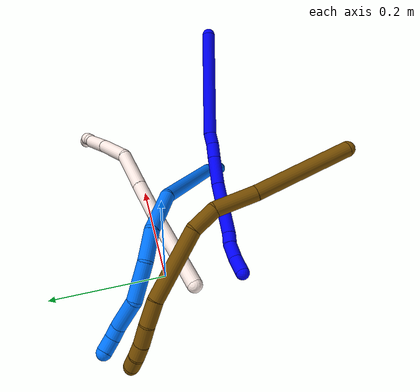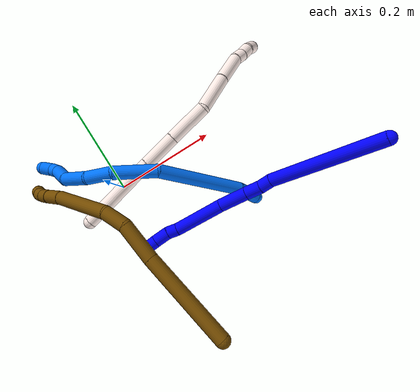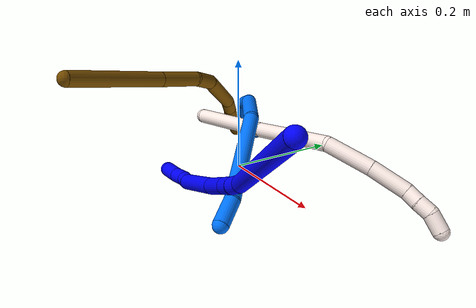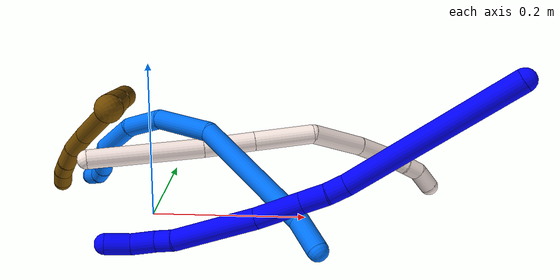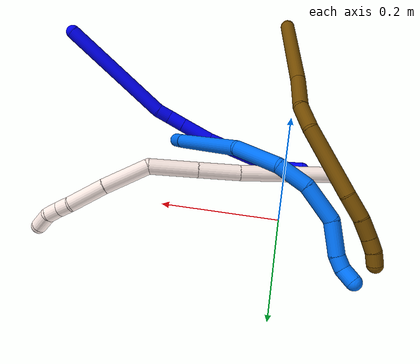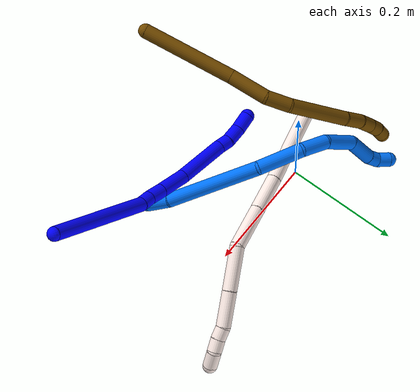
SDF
<sdf version="1.7">
 <world name="default">
  <model name="1">
   <static>0</static>
   <link name="1">
    <collision name="collision-cylinder-e_1_1_4">
     <pose>-0.004917 -0.024879 -0.101706 2.90169 -0.046922 -0.384557</pose>
     <geometry><cylinder><radius>0.0125</radius><length>0.20964</length></cylinder></geometry>
     <surface>
      <friction><ode><mu>1.16</mu><mu2>1.16</mu2><slip1>0</slip1><slip2>0</slip2></ode></friction>
      <contact><ode><kp>1e+06</kp><kd>1</kd><max_vel>0</max_vel><min_depth>0.001</min_depth></ode></contact>
     </surface>
    </collision>
    <visual name="visual-cylinder-e_1_1_4">
     <pose>-0.004917 -0.024879 -0.101706 2.90169 -0.046922 -0.384557</pose>
     <geometry><cylinder><radius>0.0125</radius><length>0.20964</length></cylinder></geometry>
     <material><ambient>0 0 1 1</ambient></material>
    </visual>
    <collision name="collision-cylinder-e_2_4_5">
     <pose>-0.013176 -0.051934 -0.214553 2.94869 -0.286384 -1.95954</pose>
     <geometry><cylinder><radius>0.0125</radius><length>0.023668</length></cylinder></geometry>
     <surface>
      <friction><ode><mu>1.16</mu><mu2>1.16</mu2><slip1>0</slip1><slip2>0</slip2></ode></friction>
      <contact><ode><kp>1e+06</kp><kd>1</kd><max_vel>0</max_vel><min_depth>0.001</min_depth></ode></contact>
     </surface>
    </collision>
    <visual name="visual-cylinder-e_2_4_5">
     <pose>-0.013176 -0.051934 -0.214553 2.94869 -0.286384 -1.95954</pose>
     <geometry><cylinder><radius>0.0125</radius><length>0.023668</length></cylinder></geometry>
     <material><ambient>0 0 1 1</ambient></material>
    </visual>
    <collision name="collision-cylinder-e_3_5_6">
     <pose>-0.019427 -0.054931 -0.240234 3.08516 -0.197114 -2.58547</pose>
     <geometry><cylinder><radius>0.0125</radius><length>0.029701</length></cylinder></geometry>
     <surface>
      <friction><ode><mu>1.16</mu><mu2>1.16</mu2><slip1>0</slip1><slip2>0</slip2></ode></friction>
      <contact><ode><kp>1e+06</kp><kd>1</kd><max_vel>0</max_vel><min_depth>0.001</min_depth></ode></contact>
     </surface>
    </collision>
    <visual name="visual-cylinder-e_3_5_6">
     <pose>-0.019427 -0.054931 -0.240234 3.08516 -0.197114 -2.58547</pose>
     <geometry><cylinder><radius>0.0125</radius><length>0.029701</length></cylinder></geometry>
     <material><ambient>0 0 1 1</ambient></material>
    </visual>
    <collision name="collision-cylinder-e_4_6_7">
     <pose>-0.028386 -0.057579 -0.281815 3.07416 -0.219644 -2.54793</pose>
     <geometry><cylinder><radius>0.0125</radius><length>0.05554</length></cylinder></geometry>
     <surface>
      <friction><ode><mu>1.16</mu><mu2>1.16</mu2><slip1>0</slip1><slip2>0</slip2></ode></friction>
      <contact><ode><kp>1e+06</kp><kd>1</kd><max_vel>0</max_vel><min_depth>0.001</min_depth></ode></contact>
     </surface>
    </collision>
    <visual name="visual-cylinder-e_4_6_7">
     <pose>-0.028386 -0.057579 -0.281815 3.07416 -0.219644 -2.54793</pose>
     <geometry><cylinder><radius>0.0125</radius><length>0.05554</length></cylinder></geometry>
     <material><ambient>0 0 1 1</ambient></material>
    </visual>
    <collision name="collision-cylinder-e_5_7_8">
     <pose>-0.049445 -0.059577 -0.356586 3.13799 -0.304652 -3.11815</pose>
     <geometry><cylinder><radius>0.0125</radius><length>0.10007</length></cylinder></geometry>
     <surface>
      <friction><ode><mu>1.16</mu><mu2>1.16</mu2><slip1>0</slip1><slip2>0</slip2></ode></friction>
      <contact><ode><kp>1e+06</kp><kd>1</kd><max_vel>0</max_vel><min_depth>0.001</min_depth></ode></contact>
     </surface>
    </collision>
    <visual name="visual-cylinder-e_5_7_8">
     <pose>-0.049445 -0.059577 -0.356586 3.13799 -0.304652 -3.11815</pose>
     <geometry><cylinder><radius>0.0125</radius><length>0.10007</length></cylinder></geometry>
     <material><ambient>0 0 1 1</ambient></material>
    </visual>
    <collision name="collision-cylinder-e_6_8_9">
     <pose>-0.066711 -0.057701 -0.41437 -2.94069 -0.216544 1.64625</pose>
     <geometry><cylinder><radius>0.0125</radius><length>0.021009</length></cylinder></geometry>
     <surface>
      <friction><ode><mu>1.16</mu><mu2>1.16</mu2><slip1>0</slip1><slip2>0</slip2></ode></friction>
      <contact><ode><kp>1e+06</kp><kd>1</kd><max_vel>0</max_vel><min_depth>0.001</min_depth></ode></contact>
     </surface>
    </collision>
    <visual name="visual-cylinder-e_6_8_9">
     <pose>-0.066711 -0.057701 -0.41437 -2.94069 -0.216544 1.64625</pose>
     <geometry><cylinder><radius>0.0125</radius><length>0.021009</length></cylinder></geometry>
     <material><ambient>0 0 1 1</ambient></material>
    </visual>
    <collision name="collision-cylinder-e_7_9_10">
     <pose>-0.075587 -0.053757 -0.43758 -2.99843 -0.462013 2.54977</pose>
     <geometry><cylinder><radius>0.0125</radius><length>0.029701</length></cylinder></geometry>
     <surface>
      <friction><ode><mu>1.16</mu><mu2>1.16</mu2><slip1>0</slip1><slip2>0</slip2></ode></friction>
      <contact><ode><kp>1e+06</kp><kd>1</kd><max_vel>0</max_vel><min_depth>0.001</min_depth></ode></contact>
     </surface>
    </collision>
    <visual name="visual-cylinder-e_7_9_10">
     <pose>-0.075587 -0.053757 -0.43758 -2.99843 -0.462013 2.54977</pose>
     <geometry><cylinder><radius>0.0125</radius><length>0.029701</length></cylinder></geometry>
     <material><ambient>0 0 1 1</ambient></material>
    </visual>
    <collision name="collision-cylinder-e_8_10_2">
     <pose>-0.090366 -0.048076 -0.46316 -2.84588 -0.560987 2.18727</pose>
     <geometry><cylinder><radius>0.0125</radius><length>0.030672</length></cylinder></geometry>
     <surface>
      <friction><ode><mu>1.16</mu><mu2>1.16</mu2><slip1>0</slip1><slip2>0</slip2></ode></friction>
      <contact><ode><kp>1e+06</kp><kd>1</kd><max_vel>0</max_vel><min_depth>0.001</min_depth></ode></contact>
     </surface>
    </collision>
    <visual name="visual-cylinder-e_8_10_2">
     <pose>-0.090366 -0.048076 -0.46316 -2.84588 -0.560987 2.18727</pose>
     <geometry><cylinder><radius>0.0125</radius><length>0.030672</length></cylinder></geometry>
     <material><ambient>0 0 1 1</ambient></material>
    </visual>
    <collision name="collision-sphere-2">
     <pose>-0.098525 -0.044292 -0.475582 0 -0 0</pose>
     <geometry><sphere><radius>0.0125</radius></sphere></geometry>
     <surface>
      <friction><ode><mu>1.16</mu><mu2>1.16</mu2><slip1>0</slip1><slip2>0</slip2></ode></friction>
      <contact><ode><kp>1e+06</kp><kd>1</kd><max_vel>0</max_vel><min_depth>0.001</min_depth></ode></contact>
     </surface>
    </collision>
    <visual name="visual-sphere-2">
     <pose>-0.098525 -0.044292 -0.475582 0 -0 0</pose>
     <geometry><sphere><radius>0.0125</radius></sphere></geometry>
     <material><ambient>0 0 1 1</ambient></material>
    </visual>
    <collision name="collision-sphere-10">
     <pose>-0.082207 -0.051861 -0.450738 0 -0 0</pose>
     <geometry><sphere><radius>0.0125</radius></sphere></geometry>
     <surface>
      <friction><ode><mu>1.16</mu><mu2>1.16</mu2><slip1>0</slip1><slip2>0</slip2></ode></friction>
      <contact><ode><kp>1e+06</kp><kd>1</kd><max_vel>0</max_vel><min_depth>0.001</min_depth></ode></contact>
     </surface>
    </collision>
    <visual name="visual-sphere-10">
     <pose>-0.082207 -0.051861 -0.450738 0 -0 0</pose>
     <geometry><sphere><radius>0.0125</radius></sphere></geometry>
     <material><ambient>0 0 1 1</ambient></material>
    </visual>
    <collision name="collision-sphere-9">
     <pose>-0.068968 -0.055654 -0.424423 0 -0 0</pose>
     <geometry><sphere><radius>0.0125</radius></sphere></geometry>
     <surface>
      <friction><ode><mu>1.16</mu><mu2>1.16</mu2><slip1>0</slip1><slip2>0</slip2></ode></friction>
      <contact><ode><kp>1e+06</kp><kd>1</kd><max_vel>0</max_vel><min_depth>0.001</min_depth></ode></contact>
     </surface>
    </collision>
    <visual name="visual-sphere-9">
     <pose>-0.068968 -0.055654 -0.424423 0 -0 0</pose>
     <geometry><sphere><radius>0.0125</radius></sphere></geometry>
     <material><ambient>0 0 1 1</ambient></material>
    </visual>
    <collision name="collision-sphere-4">
     <pose>-0.009833 -0.049758 -0.203412 0 -0 0</pose>
     <geometry><sphere><radius>0.0125</radius></sphere></geometry>
     <surface>
      <friction><ode><mu>1.16</mu><mu2>1.16</mu2><slip1>0</slip1><slip2>0</slip2></ode></friction>
      <contact><ode><kp>1e+06</kp><kd>1</kd><max_vel>0</max_vel><min_depth>0.001</min_depth></ode></contact>
     </surface>
    </collision>
    <visual name="visual-sphere-4">
     <pose>-0.009833 -0.049758 -0.203412 0 -0 0</pose>
     <geometry><sphere><radius>0.0125</radius></sphere></geometry>
     <material><ambient>0 0 1 1</ambient></material>
    </visual>
    <collision name="collision-sphere-1">
     <geometry><sphere><radius>0.0125</radius></sphere></geometry>
     <surface>
      <friction><ode><mu>1.16</mu><mu2>1.16</mu2><slip1>0</slip1><slip2>0</slip2></ode></friction>
      <contact><ode><kp>1e+06</kp><kd>1</kd><max_vel>0</max_vel><min_depth>0.001</min_depth></ode></contact>
     </surface>
    </collision>
    <visual name="visual-sphere-1">
     <geometry><sphere><radius>0.0125</radius></sphere></geometry>
     <material><ambient>0 0 1 1</ambient></material>
    </visual>
    <collision name="collision-sphere-8">
     <pose>-0.064454 -0.059749 -0.404317 0 -0 0</pose>
     <geometry><sphere><radius>0.0125</radius></sphere></geometry>
     <surface>
      <friction><ode><mu>1.16</mu><mu2>1.16</mu2><slip1>0</slip1><slip2>0</slip2></ode></friction>
      <contact><ode><kp>1e+06</kp><kd>1</kd><max_vel>0</max_vel><min_depth>0.001</min_depth></ode></contact>
     </surface>
    </collision>
    <visual name="visual-sphere-8">
     <pose>-0.064454 -0.059749 -0.404317 0 -0 0</pose>
     <geometry><sphere><radius>0.0125</radius></sphere></geometry>
     <material><ambient>0 0 1 1</ambient></material>
    </visual>
    <collision name="collision-sphere-5">
     <pose>-0.016519 -0.05411 -0.225694 0 -0 0</pose>
     <geometry><sphere><radius>0.0125</radius></sphere></geometry>
     <surface>
      <friction><ode><mu>1.16</mu><mu2>1.16</mu2><slip1>0</slip1><slip2>0</slip2></ode></friction>
      <contact><ode><kp>1e+06</kp><kd>1</kd><max_vel>0</max_vel><min_depth>0.001</min_depth></ode></contact>
     </surface>
    </collision>
    <visual name="visual-sphere-5">
     <pose>-0.016519 -0.05411 -0.225694 0 -0 0</pose>
     <geometry><sphere><radius>0.0125</radius></sphere></geometry>
     <material><ambient>0 0 1 1</ambient></material>
    </visual>
    <collision name="collision-sphere-6">
     <pose>-0.022336 -0.055753 -0.254774 0 -0 0</pose>
     <geometry><sphere><radius>0.0125</radius></sphere></geometry>
     <surface>
      <friction><ode><mu>1.16</mu><mu2>1.16</mu2><slip1>0</slip1><slip2>0</slip2></ode></friction>
      <contact><ode><kp>1e+06</kp><kd>1</kd><max_vel>0</max_vel><min_depth>0.001</min_depth></ode></contact>
     </surface>
    </collision>
    <visual name="visual-sphere-6">
     <pose>-0.022336 -0.055753 -0.254774 0 -0 0</pose>
     <geometry><sphere><radius>0.0125</radius></sphere></geometry>
     <material><ambient>0 0 1 1</ambient></material>
    </visual>
    <collision name="collision-sphere-7">
     <pose>-0.034437 -0.059405 -0.308856 0 -0 0</pose>
     <geometry><sphere><radius>0.0125</radius></sphere></geometry>
     <surface>
      <friction><ode><mu>1.16</mu><mu2>1.16</mu2><slip1>0</slip1><slip2>0</slip2></ode></friction>
      <contact><ode><kp>1e+06</kp><kd>1</kd><max_vel>0</max_vel><min_depth>0.001</min_depth></ode></contact>
     </surface>
    </collision>
    <visual name="visual-sphere-7">
     <pose>-0.034437 -0.059405 -0.308856 0 -0 0</pose>
     <geometry><sphere><radius>0.0125</radius></sphere></geometry>
     <material><ambient>0 0 1 1</ambient></material>
    </visual>
    <inertial>
     <pose>-0.029725 -0.043039 -0.241557 0 -0 0</pose>
     <mass>0.5</mass>
     <inertia>
      <ixx>0.000307</ixx>
      <ixy>0</ixy>
      <ixz>0</ixz>
      <iyy>-0.000888</iyy>
      <iyz>0</iyz>
      <izz>0.000219</izz>
     </inertia>
    </inertial>
   </link>
   <pose>0.406671 -0.183846 0.219406 1.13694 0.256713 1.08536</pose>
  </model>
  <model name="11">
   <static>0</static>
   <link name="11">
    <collision name="collision-cylinder-e_1_1_4">
     <pose>0.060276 0.038331 0.018722 -1.11644 0.954903 -0.625002</pose>
     <geometry><cylinder><radius>0.0125</radius><length>0.147687</length></cylinder></geometry>
     <surface>
      <friction><ode><mu>1.16</mu><mu2>1.16</mu2><slip1>0</slip1><slip2>0</slip2></ode></friction>
      <contact><ode><kp>1e+06</kp><kd>1</kd><max_vel>0</max_vel><min_depth>0.001</min_depth></ode></contact>
     </surface>
    </collision>
    <visual name="visual-cylinder-e_1_1_4">
     <pose>0.060276 0.038331 0.018722 -1.11644 0.954903 -0.625002</pose>
     <geometry><cylinder><radius>0.0125</radius><length>0.147687</length></cylinder></geometry>
     <material><ambient>1 0.933333 0.909804 1</ambient></material>
    </visual>
    <collision name="collision-cylinder-e_2_4_5">
     <pose>0.14693 0.09514 0.045165 -1.175 0.92144 -0.638465</pose>
     <geometry><cylinder><radius>0.0125</radius><length>0.06624</length></cylinder></geometry>
     <surface>
      <friction><ode><mu>1.16</mu><mu2>1.16</mu2><slip1>0</slip1><slip2>0</slip2></ode></friction>
      <contact><ode><kp>1e+06</kp><kd>1</kd><max_vel>0</max_vel><min_depth>0.001</min_depth></ode></contact>
     </surface>
    </collision>
    <visual name="visual-cylinder-e_2_4_5">
     <pose>0.14693 0.09514 0.045165 -1.175 0.92144 -0.638465</pose>
     <geometry><cylinder><radius>0.0125</radius><length>0.06624</length></cylinder></geometry>
     <material><ambient>1 0.933333 0.909804 1</ambient></material>
    </visual>
    <collision name="collision-cylinder-e_3_5_6">
     <pose>0.204051 0.135462 0.062204 -1.16762 0.913061 -0.62748</pose>
     <geometry><cylinder><radius>0.0125</radius><length>0.077692</length></cylinder></geometry>
     <surface>
      <friction><ode><mu>1.16</mu><mu2>1.16</mu2><slip1>0</slip1><slip2>0</slip2></ode></friction>
      <contact><ode><kp>1e+06</kp><kd>1</kd><max_vel>0</max_vel><min_depth>0.001</min_depth></ode></contact>
     </surface>
    </collision>
    <visual name="visual-cylinder-e_3_5_6">
     <pose>0.204051 0.135462 0.062204 -1.16762 0.913061 -0.62748</pose>
     <geometry><cylinder><radius>0.0125</radius><length>0.077692</length></cylinder></geometry>
     <material><ambient>1 0.933333 0.909804 1</ambient></material>
    </visual>
    <collision name="collision-cylinder-e_4_6_7">
     <pose>0.268888 0.161404 0.086977 -0.259196 1.13226 -0.165275</pose>
     <geometry><cylinder><radius>0.0125</radius><length>0.075317</length></cylinder></geometry>
     <surface>
      <friction><ode><mu>1.16</mu><mu2>1.16</mu2><slip1>0</slip1><slip2>0</slip2></ode></friction>
      <contact><ode><kp>1e+06</kp><kd>1</kd><max_vel>0</max_vel><min_depth>0.001</min_depth></ode></contact>
     </surface>
    </collision>
    <visual name="visual-cylinder-e_4_6_7">
     <pose>0.268888 0.161404 0.086977 -0.259196 1.13226 -0.165275</pose>
     <geometry><cylinder><radius>0.0125</radius><length>0.075317</length></cylinder></geometry>
     <material><ambient>1 0.933333 0.909804 1</ambient></material>
    </visual>
    <collision name="collision-cylinder-e_5_7_8">
     <pose>0.329506 0.167272 0.116706 -0.123348 1.07395 -0.073492</pose>
     <geometry><cylinder><radius>0.0125</radius><length>0.060342</length></cylinder></geometry>
     <surface>
      <friction><ode><mu>1.16</mu><mu2>1.16</mu2><slip1>0</slip1><slip2>0</slip2></ode></friction>
      <contact><ode><kp>1e+06</kp><kd>1</kd><max_vel>0</max_vel><min_depth>0.001</min_depth></ode></contact>
     </surface>
    </collision>
    <visual name="visual-cylinder-e_5_7_8">
     <pose>0.329506 0.167272 0.116706 -0.123348 1.07395 -0.073492</pose>
     <geometry><cylinder><radius>0.0125</radius><length>0.060342</length></cylinder></geometry>
     <material><ambient>1 0.933333 0.909804 1</ambient></material>
    </visual>
    <collision name="collision-cylinder-e_6_8_9">
     <pose>0.363728 0.170626 0.138066 -0.219933 0.814494 -0.095183</pose>
     <geometry><cylinder><radius>0.0125</radius><length>0.021168</length></cylinder></geometry>
     <surface>
      <friction><ode><mu>1.16</mu><mu2>1.16</mu2><slip1>0</slip1><slip2>0</slip2></ode></friction>
      <contact><ode><kp>1e+06</kp><kd>1</kd><max_vel>0</max_vel><min_depth>0.001</min_depth></ode></contact>
     </surface>
    </collision>
    <visual name="visual-cylinder-e_6_8_9">
     <pose>0.363728 0.170626 0.138066 -0.219933 0.814494 -0.095183</pose>
     <geometry><cylinder><radius>0.0125</radius><length>0.021168</length></cylinder></geometry>
     <material><ambient>1 0.933333 0.909804 1</ambient></material>
    </visual>
    <collision name="collision-cylinder-e_7_9_10">
     <pose>0.380358 0.17318 0.151861 -0.143651 0.921728 -0.071419</pose>
     <geometry><cylinder><radius>0.0125</radius><length>0.022422</length></cylinder></geometry>
     <surface>
      <friction><ode><mu>1.16</mu><mu2>1.16</mu2><slip1>0</slip1><slip2>0</slip2></ode></friction>
      <contact><ode><kp>1e+06</kp><kd>1</kd><max_vel>0</max_vel><min_depth>0.001</min_depth></ode></contact>
     </surface>
    </collision>
    <visual name="visual-cylinder-e_7_9_10">
     <pose>0.380358 0.17318 0.151861 -0.143651 0.921728 -0.071419</pose>
     <geometry><cylinder><radius>0.0125</radius><length>0.022422</length></cylinder></geometry>
     <material><ambient>1 0.933333 0.909804 1</ambient></material>
    </visual>
    <collision name="collision-cylinder-e_8_10_2">
     <pose>0.397599 0.171662 0.170268 0.209576 0.607171 0.065871</pose>
     <geometry><cylinder><radius>0.0125</radius><length>0.029131</length></cylinder></geometry>
     <surface>
      <friction><ode><mu>1.16</mu><mu2>1.16</mu2><slip1>0</slip1><slip2>0</slip2></ode></friction>
      <contact><ode><kp>1e+06</kp><kd>1</kd><max_vel>0</max_vel><min_depth>0.001</min_depth></ode></contact>
     </surface>
    </collision>
    <visual name="visual-cylinder-e_8_10_2">
     <pose>0.397599 0.171662 0.170268 0.209576 0.607171 0.065871</pose>
     <geometry><cylinder><radius>0.0125</radius><length>0.029131</length></cylinder></geometry>
     <material><ambient>1 0.933333 0.909804 1</ambient></material>
    </visual>
    <collision name="collision-sphere-2">
     <pose>0.40591 0.169173 0.181968 0 -0 0</pose>
     <geometry><sphere><radius>0.0125</radius></sphere></geometry>
     <surface>
      <friction><ode><mu>1.16</mu><mu2>1.16</mu2><slip1>0</slip1><slip2>0</slip2></ode></friction>
      <contact><ode><kp>1e+06</kp><kd>1</kd><max_vel>0</max_vel><min_depth>0.001</min_depth></ode></contact>
     </surface>
    </collision>
    <visual name="visual-sphere-2">
     <pose>0.40591 0.169173 0.181968 0 -0 0</pose>
     <geometry><sphere><radius>0.0125</radius></sphere></geometry>
     <material><ambient>1 0.933333 0.909804 1</ambient></material>
    </visual>
    <collision name="collision-sphere-10">
     <pose>0.389289 0.17415 0.158568 0 -0 0</pose>
     <geometry><sphere><radius>0.0125</radius></sphere></geometry>
     <surface>
      <friction><ode><mu>1.16</mu><mu2>1.16</mu2><slip1>0</slip1><slip2>0</slip2></ode></friction>
      <contact><ode><kp>1e+06</kp><kd>1</kd><max_vel>0</max_vel><min_depth>0.001</min_depth></ode></contact>
     </surface>
    </collision>
    <visual name="visual-sphere-10">
     <pose>0.389289 0.17415 0.158568 0 -0 0</pose>
     <geometry><sphere><radius>0.0125</radius></sphere></geometry>
     <material><ambient>1 0.933333 0.909804 1</ambient></material>
    </visual>
    <collision name="collision-sphere-9">
     <pose>0.371427 0.17221 0.145155 0 -0 0</pose>
     <geometry><sphere><radius>0.0125</radius></sphere></geometry>
     <surface>
      <friction><ode><mu>1.16</mu><mu2>1.16</mu2><slip1>0</slip1><slip2>0</slip2></ode></friction>
      <contact><ode><kp>1e+06</kp><kd>1</kd><max_vel>0</max_vel><min_depth>0.001</min_depth></ode></contact>
     </surface>
    </collision>
    <visual name="visual-sphere-9">
     <pose>0.371427 0.17221 0.145155 0 -0 0</pose>
     <geometry><sphere><radius>0.0125</radius></sphere></geometry>
     <material><ambient>1 0.933333 0.909804 1</ambient></material>
    </visual>
    <collision name="collision-sphere-4">
     <pose>0.120551 0.076661 0.037444 0 -0 0</pose>
     <geometry><sphere><radius>0.0125</radius></sphere></geometry>
     <surface>
      <friction><ode><mu>1.16</mu><mu2>1.16</mu2><slip1>0</slip1><slip2>0</slip2></ode></friction>
      <contact><ode><kp>1e+06</kp><kd>1</kd><max_vel>0</max_vel><min_depth>0.001</min_depth></ode></contact>
     </surface>
    </collision>
    <visual name="visual-sphere-4">
     <pose>0.120551 0.076661 0.037444 0 -0 0</pose>
     <geometry><sphere><radius>0.0125</radius></sphere></geometry>
     <material><ambient>1 0.933333 0.909804 1</ambient></material>
    </visual>
    <collision name="collision-sphere-1">
     <geometry><sphere><radius>0.0125</radius></sphere></geometry>
     <surface>
      <friction><ode><mu>1.16</mu><mu2>1.16</mu2><slip1>0</slip1><slip2>0</slip2></ode></friction>
      <contact><ode><kp>1e+06</kp><kd>1</kd><max_vel>0</max_vel><min_depth>0.001</min_depth></ode></contact>
     </surface>
    </collision>
    <visual name="visual-sphere-1">
     <geometry><sphere><radius>0.0125</radius></sphere></geometry>
     <material><ambient>1 0.933333 0.909804 1</ambient></material>
    </visual>
    <collision name="collision-sphere-8">
     <pose>0.356029 0.169041 0.130978 0 -0 0</pose>
     <geometry><sphere><radius>0.0125</radius></sphere></geometry>
     <surface>
      <friction><ode><mu>1.16</mu><mu2>1.16</mu2><slip1>0</slip1><slip2>0</slip2></ode></friction>
      <contact><ode><kp>1e+06</kp><kd>1</kd><max_vel>0</max_vel><min_depth>0.001</min_depth></ode></contact>
     </surface>
    </collision>
    <visual name="visual-sphere-8">
     <pose>0.356029 0.169041 0.130978 0 -0 0</pose>
     <geometry><sphere><radius>0.0125</radius></sphere></geometry>
     <material><ambient>1 0.933333 0.909804 1</ambient></material>
    </visual>
    <collision name="collision-sphere-5">
     <pose>0.173309 0.113618 0.052886 0 -0 0</pose>
     <geometry><sphere><radius>0.0125</radius></sphere></geometry>
     <surface>
      <friction><ode><mu>1.16</mu><mu2>1.16</mu2><slip1>0</slip1><slip2>0</slip2></ode></friction>
      <contact><ode><kp>1e+06</kp><kd>1</kd><max_vel>0</max_vel><min_depth>0.001</min_depth></ode></contact>
     </surface>
    </collision>
    <visual name="visual-sphere-5">
     <pose>0.173309 0.113618 0.052886 0 -0 0</pose>
     <geometry><sphere><radius>0.0125</radius></sphere></geometry>
     <material><ambient>1 0.933333 0.909804 1</ambient></material>
    </visual>
    <collision name="collision-sphere-6">
     <pose>0.234793 0.157305 0.071521 0 -0 0</pose>
     <geometry><sphere><radius>0.0125</radius></sphere></geometry>
     <surface>
      <friction><ode><mu>1.16</mu><mu2>1.16</mu2><slip1>0</slip1><slip2>0</slip2></ode></friction>
      <contact><ode><kp>1e+06</kp><kd>1</kd><max_vel>0</max_vel><min_depth>0.001</min_depth></ode></contact>
     </surface>
    </collision>
    <visual name="visual-sphere-6">
     <pose>0.234793 0.157305 0.071521 0 -0 0</pose>
     <geometry><sphere><radius>0.0125</radius></sphere></geometry>
     <material><ambient>1 0.933333 0.909804 1</ambient></material>
    </visual>
    <collision name="collision-sphere-7">
     <pose>0.302983 0.165502 0.102434 0 -0 0</pose>
     <geometry><sphere><radius>0.0125</radius></sphere></geometry>
     <surface>
      <friction><ode><mu>1.16</mu><mu2>1.16</mu2><slip1>0</slip1><slip2>0</slip2></ode></friction>
      <contact><ode><kp>1e+06</kp><kd>1</kd><max_vel>0</max_vel><min_depth>0.001</min_depth></ode></contact>
     </surface>
    </collision>
    <visual name="visual-sphere-7">
     <pose>0.302983 0.165502 0.102434 0 -0 0</pose>
     <geometry><sphere><radius>0.0125</radius></sphere></geometry>
     <material><ambient>1 0.933333 0.909804 1</ambient></material>
    </visual>
    <inertial>
     <pose>0.204866 0.114466 0.070941 0 -0 0</pose>
     <mass>0.5</mass>
     <inertia>
      <ixx>0.000104</ixx>
      <ixy>0</ixy>
      <ixz>0</ixz>
      <iyy>0.000224</iyy>
      <iyz>0</iyz>
      <izz>-0.000508</izz>
     </inertia>
    </inertial>
   </link>
   <pose>-0.075288 -0.03185 0.083345 2.48982 0.073061 0.836734</pose>
  </model>
  <model name="12">
   <static>0</static>
   <link name="12">
    <collision name="collision-cylinder-e_1_1_4">
     <pose>-0.024055 0.061344 -0.048035 -2.23512 -0.299461 0.600733</pose>
     <geometry><cylinder><radius>0.0125</radius><length>0.163084</length></cylinder></geometry>
     <surface>
      <friction><ode><mu>1.16</mu><mu2>1.16</mu2><slip1>0</slip1><slip2>0</slip2></ode></friction>
      <contact><ode><kp>1e+06</kp><kd>1</kd><max_vel>0</max_vel><min_depth>0.001</min_depth></ode></contact>
     </surface>
    </collision>
    <visual name="visual-cylinder-e_1_1_4">
     <pose>-0.024055 0.061344 -0.048035 -2.23512 -0.299461 0.600733</pose>
     <geometry><cylinder><radius>0.0125</radius><length>0.163084</length></cylinder></geometry>
     <material><ambient>0.466667 0.301961 0 1</ambient></material>
    </visual>
    <collision name="collision-cylinder-e_2_4_5">
     <pose>-0.057396 0.14691 -0.118139 -2.30969 -0.276119 0.609498</pose>
     <geometry><cylinder><radius>0.0125</radius><length>0.068115</length></cylinder></geometry>
     <surface>
      <friction><ode><mu>1.16</mu><mu2>1.16</mu2><slip1>0</slip1><slip2>0</slip2></ode></friction>
      <contact><ode><kp>1e+06</kp><kd>1</kd><max_vel>0</max_vel><min_depth>0.001</min_depth></ode></contact>
     </surface>
    </collision>
    <visual name="visual-cylinder-e_2_4_5">
     <pose>-0.057396 0.14691 -0.118139 -2.30969 -0.276119 0.609498</pose>
     <geometry><cylinder><radius>0.0125</radius><length>0.068115</length></cylinder></geometry>
     <material><ambient>0.466667 0.301961 0 1</ambient></material>
    </visual>
    <collision name="collision-cylinder-e_3_5_6">
     <pose>-0.075695 0.189459 -0.147271 -1.93872 -0.430275 0.616552</pose>
     <geometry><cylinder><radius>0.0125</radius><length>0.043223</length></cylinder></geometry>
     <surface>
      <friction><ode><mu>1.16</mu><mu2>1.16</mu2><slip1>0</slip1><slip2>0</slip2></ode></friction>
      <contact><ode><kp>1e+06</kp><kd>1</kd><max_vel>0</max_vel><min_depth>0.001</min_depth></ode></contact>
     </surface>
    </collision>
    <visual name="visual-cylinder-e_3_5_6">
     <pose>-0.075695 0.189459 -0.147271 -1.93872 -0.430275 0.616552</pose>
     <geometry><cylinder><radius>0.0125</radius><length>0.043223</length></cylinder></geometry>
     <material><ambient>0.466667 0.301961 0 1</ambient></material>
    </visual>
    <collision name="collision-cylinder-e_4_6_7">
     <pose>-0.118041 0.254625 -0.156521 -1.61742 -0.617961 0.6455</pose>
     <geometry><cylinder><radius>0.0125</radius><length>0.115058</length></cylinder></geometry>
     <surface>
      <friction><ode><mu>1.16</mu><mu2>1.16</mu2><slip1>0</slip1><slip2>0</slip2></ode></friction>
      <contact><ode><kp>1e+06</kp><kd>1</kd><max_vel>0</max_vel><min_depth>0.001</min_depth></ode></contact>
     </surface>
    </collision>
    <visual name="visual-cylinder-e_4_6_7">
     <pose>-0.118041 0.254625 -0.156521 -1.61742 -0.617961 0.6455</pose>
     <geometry><cylinder><radius>0.0125</radius><length>0.115058</length></cylinder></geometry>
     <material><ambient>0.466667 0.301961 0 1</ambient></material>
    </visual>
    <collision name="collision-cylinder-e_5_7_8">
     <pose>-0.163925 0.315507 -0.156463 -1.4124 -0.723159 0.624098</pose>
     <geometry><cylinder><radius>0.0125</radius><length>0.037939</length></cylinder></geometry>
     <surface>
      <friction><ode><mu>1.16</mu><mu2>1.16</mu2><slip1>0</slip1><slip2>0</slip2></ode></friction>
      <contact><ode><kp>1e+06</kp><kd>1</kd><max_vel>0</max_vel><min_depth>0.001</min_depth></ode></contact>
     </surface>
    </collision>
    <visual name="visual-cylinder-e_5_7_8">
     <pose>-0.163925 0.315507 -0.156463 -1.4124 -0.723159 0.624098</pose>
     <geometry><cylinder><radius>0.0125</radius><length>0.037939</length></cylinder></geometry>
     <material><ambient>0.466667 0.301961 0 1</ambient></material>
    </visual>
    <collision name="collision-cylinder-e_6_8_9">
     <pose>-0.18878 0.338875 -0.152264 -1.36401 -0.911861 0.75789</pose>
     <geometry><cylinder><radius>0.0125</radius><length>0.03112</length></cylinder></geometry>
     <surface>
      <friction><ode><mu>1.16</mu><mu2>1.16</mu2><slip1>0</slip1><slip2>0</slip2></ode></friction>
      <contact><ode><kp>1e+06</kp><kd>1</kd><max_vel>0</max_vel><min_depth>0.001</min_depth></ode></contact>
     </surface>
    </collision>
    <visual name="visual-cylinder-e_6_8_9">
     <pose>-0.18878 0.338875 -0.152264 -1.36401 -0.911861 0.75789</pose>
     <geometry><cylinder><radius>0.0125</radius><length>0.03112</length></cylinder></geometry>
     <material><ambient>0.466667 0.301961 0 1</ambient></material>
    </visual>
    <collision name="collision-cylinder-e_7_9_10">
     <pose>-0.209458 0.354781 -0.150003 -1.52454 -0.904211 0.868364</pose>
     <geometry><cylinder><radius>0.0125</radius><length>0.021313</length></cylinder></geometry>
     <surface>
      <friction><ode><mu>1.16</mu><mu2>1.16</mu2><slip1>0</slip1><slip2>0</slip2></ode></friction>
      <contact><ode><kp>1e+06</kp><kd>1</kd><max_vel>0</max_vel><min_depth>0.001</min_depth></ode></contact>
     </surface>
    </collision>
    <visual name="visual-cylinder-e_7_9_10">
     <pose>-0.209458 0.354781 -0.150003 -1.52454 -0.904211 0.868364</pose>
     <geometry><cylinder><radius>0.0125</radius><length>0.021313</length></cylinder></geometry>
     <material><ambient>0.466667 0.301961 0 1</ambient></material>
    </visual>
    <collision name="collision-cylinder-e_8_10_2">
     <pose>-0.226865 0.36579 -0.150256 -1.69608 -1.11189 1.22744</pose>
     <geometry><cylinder><radius>0.0125</radius><length>0.020148</length></cylinder></geometry>
     <surface>
      <friction><ode><mu>1.16</mu><mu2>1.16</mu2><slip1>0</slip1><slip2>0</slip2></ode></friction>
      <contact><ode><kp>1e+06</kp><kd>1</kd><max_vel>0</max_vel><min_depth>0.001</min_depth></ode></contact>
     </surface>
    </collision>
    <visual name="visual-cylinder-e_8_10_2">
     <pose>-0.226865 0.36579 -0.150256 -1.69608 -1.11189 1.22744</pose>
     <geometry><cylinder><radius>0.0125</radius><length>0.020148</length></cylinder></geometry>
     <material><ambient>0.466667 0.301961 0 1</ambient></material>
    </visual>
    <collision name="collision-sphere-2">
     <pose>-0.235896 0.370218 -0.150814 0 -0 0</pose>
     <geometry><sphere><radius>0.0125</radius></sphere></geometry>
     <surface>
      <friction><ode><mu>1.16</mu><mu2>1.16</mu2><slip1>0</slip1><slip2>0</slip2></ode></friction>
      <contact><ode><kp>1e+06</kp><kd>1</kd><max_vel>0</max_vel><min_depth>0.001</min_depth></ode></contact>
     </surface>
    </collision>
    <visual name="visual-sphere-2">
     <pose>-0.235896 0.370218 -0.150814 0 -0 0</pose>
     <geometry><sphere><radius>0.0125</radius></sphere></geometry>
     <material><ambient>0.466667 0.301961 0 1</ambient></material>
    </visual>
    <collision name="collision-sphere-10">
     <pose>-0.217833 0.361363 -0.149699 0 -0 0</pose>
     <geometry><sphere><radius>0.0125</radius></sphere></geometry>
     <surface>
      <friction><ode><mu>1.16</mu><mu2>1.16</mu2><slip1>0</slip1><slip2>0</slip2></ode></friction>
      <contact><ode><kp>1e+06</kp><kd>1</kd><max_vel>0</max_vel><min_depth>0.001</min_depth></ode></contact>
     </surface>
    </collision>
    <visual name="visual-sphere-10">
     <pose>-0.217833 0.361363 -0.149699 0 -0 0</pose>
     <geometry><sphere><radius>0.0125</radius></sphere></geometry>
     <material><ambient>0.466667 0.301961 0 1</ambient></material>
    </visual>
    <collision name="collision-sphere-9">
     <pose>-0.201083 0.348199 -0.150308 0 -0 0</pose>
     <geometry><sphere><radius>0.0125</radius></sphere></geometry>
     <surface>
      <friction><ode><mu>1.16</mu><mu2>1.16</mu2><slip1>0</slip1><slip2>0</slip2></ode></friction>
      <contact><ode><kp>1e+06</kp><kd>1</kd><max_vel>0</max_vel><min_depth>0.001</min_depth></ode></contact>
     </surface>
    </collision>
    <visual name="visual-sphere-9">
     <pose>-0.201083 0.348199 -0.150308 0 -0 0</pose>
     <geometry><sphere><radius>0.0125</radius></sphere></geometry>
     <material><ambient>0.466667 0.301961 0 1</ambient></material>
    </visual>
    <collision name="collision-sphere-4">
     <pose>-0.048111 0.122688 -0.096071 0 -0 0</pose>
     <geometry><sphere><radius>0.0125</radius></sphere></geometry>
     <surface>
      <friction><ode><mu>1.16</mu><mu2>1.16</mu2><slip1>0</slip1><slip2>0</slip2></ode></friction>
      <contact><ode><kp>1e+06</kp><kd>1</kd><max_vel>0</max_vel><min_depth>0.001</min_depth></ode></contact>
     </surface>
    </collision>
    <visual name="visual-sphere-4">
     <pose>-0.048111 0.122688 -0.096071 0 -0 0</pose>
     <geometry><sphere><radius>0.0125</radius></sphere></geometry>
     <material><ambient>0.466667 0.301961 0 1</ambient></material>
    </visual>
    <collision name="collision-sphere-1">
     <geometry><sphere><radius>0.0125</radius></sphere></geometry>
     <surface>
      <friction><ode><mu>1.16</mu><mu2>1.16</mu2><slip1>0</slip1><slip2>0</slip2></ode></friction>
      <contact><ode><kp>1e+06</kp><kd>1</kd><max_vel>0</max_vel><min_depth>0.001</min_depth></ode></contact>
     </surface>
    </collision>
    <visual name="visual-sphere-1">
     <geometry><sphere><radius>0.0125</radius></sphere></geometry>
     <material><ambient>0.466667 0.301961 0 1</ambient></material>
    </visual>
    <collision name="collision-sphere-8">
     <pose>-0.176478 0.329551 -0.15422 0 -0 0</pose>
     <geometry><sphere><radius>0.0125</radius></sphere></geometry>
     <surface>
      <friction><ode><mu>1.16</mu><mu2>1.16</mu2><slip1>0</slip1><slip2>0</slip2></ode></friction>
      <contact><ode><kp>1e+06</kp><kd>1</kd><max_vel>0</max_vel><min_depth>0.001</min_depth></ode></contact>
     </surface>
    </collision>
    <visual name="visual-sphere-8">
     <pose>-0.176478 0.329551 -0.15422 0 -0 0</pose>
     <geometry><sphere><radius>0.0125</radius></sphere></geometry>
     <material><ambient>0.466667 0.301961 0 1</ambient></material>
    </visual>
    <collision name="collision-sphere-5">
     <pose>-0.06668 0.171132 -0.140207 0 -0 0</pose>
     <geometry><sphere><radius>0.0125</radius></sphere></geometry>
     <surface>
      <friction><ode><mu>1.16</mu><mu2>1.16</mu2><slip1>0</slip1><slip2>0</slip2></ode></friction>
      <contact><ode><kp>1e+06</kp><kd>1</kd><max_vel>0</max_vel><min_depth>0.001</min_depth></ode></contact>
     </surface>
    </collision>
    <visual name="visual-sphere-5">
     <pose>-0.06668 0.171132 -0.140207 0 -0 0</pose>
     <geometry><sphere><radius>0.0125</radius></sphere></geometry>
     <material><ambient>0.466667 0.301961 0 1</ambient></material>
    </visual>
    <collision name="collision-sphere-6">
     <pose>-0.08471 0.207786 -0.154336 0 -0 0</pose>
     <geometry><sphere><radius>0.0125</radius></sphere></geometry>
     <surface>
      <friction><ode><mu>1.16</mu><mu2>1.16</mu2><slip1>0</slip1><slip2>0</slip2></ode></friction>
      <contact><ode><kp>1e+06</kp><kd>1</kd><max_vel>0</max_vel><min_depth>0.001</min_depth></ode></contact>
     </surface>
    </collision>
    <visual name="visual-sphere-6">
     <pose>-0.08471 0.207786 -0.154336 0 -0 0</pose>
     <geometry><sphere><radius>0.0125</radius></sphere></geometry>
     <material><ambient>0.466667 0.301961 0 1</ambient></material>
    </visual>
    <collision name="collision-sphere-7">
     <pose>-0.151371 0.301464 -0.158707 0 -0 0</pose>
     <geometry><sphere><radius>0.0125</radius></sphere></geometry>
     <surface>
      <friction><ode><mu>1.16</mu><mu2>1.16</mu2><slip1>0</slip1><slip2>0</slip2></ode></friction>
      <contact><ode><kp>1e+06</kp><kd>1</kd><max_vel>0</max_vel><min_depth>0.001</min_depth></ode></contact>
     </surface>
    </collision>
    <visual name="visual-sphere-7">
     <pose>-0.151371 0.301464 -0.158707 0 -0 0</pose>
     <geometry><sphere><radius>0.0125</radius></sphere></geometry>
     <material><ambient>0.466667 0.301961 0 1</ambient></material>
    </visual>
    <inertial>
     <pose>-0.09163 0.189887 -0.114308 0 -0 0</pose>
     <mass>0.5</mass>
     <inertia>
      <ixx>0.000681</ixx>
      <ixy>0</ixy>
      <ixz>0</ixz>
      <iyy>0.000215</iyy>
      <iyz>0</iyz>
      <izz>-0.000226</izz>
     </inertia>
    </inertial>
   </link>
   <pose>0.026292 -0.301614 0.212814 2.9876 -1.40197 -2.10344</pose>
  </model>
  <model name="14">
   <static>0</static>
   <link name="14">
    <collision name="collision-cylinder-e_1_1_4">
     <pose>0.000764 0.000274 0.021878 -0.012515 0.034884 -0.000218</pose>
     <geometry><cylinder><radius>0.0125</radius><length>0.043787</length></cylinder></geometry>
     <surface>
      <friction><ode><mu>1.16</mu><mu2>1.16</mu2><slip1>0</slip1><slip2>0</slip2></ode></friction>
      <contact><ode><kp>1e+06</kp><kd>1</kd><max_vel>0</max_vel><min_depth>0.001</min_depth></ode></contact>
     </surface>
    </collision>
    <visual name="visual-cylinder-e_1_1_4">
     <pose>0.000764 0.000274 0.021878 -0.012515 0.034884 -0.000218</pose>
     <geometry><cylinder><radius>0.0125</radius><length>0.043787</length></cylinder></geometry>
     <material><ambient>0 0.462745 1 1</ambient></material>
    </visual>
    <collision name="collision-cylinder-e_2_4_5">
     <pose>-0.013559 -0.003493 0.127382 0.048283 -0.178278 -0.004316</pose>
     <geometry><cylinder><radius>0.0125</radius><length>0.170142</length></cylinder></geometry>
     <surface>
      <friction><ode><mu>1.16</mu><mu2>1.16</mu2><slip1>0</slip1><slip2>0</slip2></ode></friction>
      <contact><ode><kp>1e+06</kp><kd>1</kd><max_vel>0</max_vel><min_depth>0.001</min_depth></ode></contact>
     </surface>
    </collision>
    <visual name="visual-cylinder-e_2_4_5">
     <pose>-0.013559 -0.003493 0.127382 0.048283 -0.178278 -0.004316</pose>
     <geometry><cylinder><radius>0.0125</radius><length>0.170142</length></cylinder></geometry>
     <material><ambient>0 0.462745 1 1</ambient></material>
    </visual>
    <collision name="collision-cylinder-e_3_5_6">
     <pose>-0.050697 -0.003694 0.243653 -0.117093 -0.590902 0.035675</pose>
     <geometry><cylinder><radius>0.0125</radius><length>0.079165</length></cylinder></geometry>
     <surface>
      <friction><ode><mu>1.16</mu><mu2>1.16</mu2><slip1>0</slip1><slip2>0</slip2></ode></friction>
      <contact><ode><kp>1e+06</kp><kd>1</kd><max_vel>0</max_vel><min_depth>0.001</min_depth></ode></contact>
     </surface>
    </collision>
    <visual name="visual-cylinder-e_3_5_6">
     <pose>-0.050697 -0.003694 0.243653 -0.117093 -0.590902 0.035675</pose>
     <geometry><cylinder><radius>0.0125</radius><length>0.079165</length></cylinder></geometry>
     <material><ambient>0 0.462745 1 1</ambient></material>
    </visual>
    <collision name="collision-cylinder-e_4_6_7">
     <pose>-0.09244 0.007848 0.290345 -0.501552 -0.887879 0.242474</pose>
     <geometry><cylinder><radius>0.0125</radius><length>0.050769</length></cylinder></geometry>
     <surface>
      <friction><ode><mu>1.16</mu><mu2>1.16</mu2><slip1>0</slip1><slip2>0</slip2></ode></friction>
      <contact><ode><kp>1e+06</kp><kd>1</kd><max_vel>0</max_vel><min_depth>0.001</min_depth></ode></contact>
     </surface>
    </collision>
    <visual name="visual-cylinder-e_4_6_7">
     <pose>-0.09244 0.007848 0.290345 -0.501552 -0.887879 0.242474</pose>
     <geometry><cylinder><radius>0.0125</radius><length>0.050769</length></cylinder></geometry>
     <material><ambient>0 0.462745 1 1</ambient></material>
    </visual>
    <collision name="collision-cylinder-e_5_7_8">
     <pose>-0.134288 0.033372 0.315127 -1.02861 -0.816835 0.479621</pose>
     <geometry><cylinder><radius>0.0125</radius><length>0.060788</length></cylinder></geometry>
     <surface>
      <friction><ode><mu>1.16</mu><mu2>1.16</mu2><slip1>0</slip1><slip2>0</slip2></ode></friction>
      <contact><ode><kp>1e+06</kp><kd>1</kd><max_vel>0</max_vel><min_depth>0.001</min_depth></ode></contact>
     </surface>
    </collision>
    <visual name="visual-cylinder-e_5_7_8">
     <pose>-0.134288 0.033372 0.315127 -1.02861 -0.816835 0.479621</pose>
     <geometry><cylinder><radius>0.0125</radius><length>0.060788</length></cylinder></geometry>
     <material><ambient>0 0.462745 1 1</ambient></material>
    </visual>
    <collision name="collision-cylinder-e_6_8_9">
     <pose>-0.167414 0.074136 0.329734 -1.40362 -0.440524 0.374131</pose>
     <geometry><cylinder><radius>0.0125</radius><length>0.051447</length></cylinder></geometry>
     <surface>
      <friction><ode><mu>1.16</mu><mu2>1.16</mu2><slip1>0</slip1><slip2>0</slip2></ode></friction>
      <contact><ode><kp>1e+06</kp><kd>1</kd><max_vel>0</max_vel><min_depth>0.001</min_depth></ode></contact>
     </surface>
    </collision>
    <visual name="visual-cylinder-e_6_8_9">
     <pose>-0.167414 0.074136 0.329734 -1.40362 -0.440524 0.374131</pose>
     <geometry><cylinder><radius>0.0125</radius><length>0.051447</length></cylinder></geometry>
     <material><ambient>0 0.462745 1 1</ambient></material>
    </visual>
    <collision name="collision-cylinder-e_7_9_10">
     <pose>-0.184119 0.104902 0.337139 -1.14658 -0.589115 0.386844</pose>
     <geometry><cylinder><radius>0.0125</radius><length>0.020648</length></cylinder></geometry>
     <surface>
      <friction><ode><mu>1.16</mu><mu2>1.16</mu2><slip1>0</slip1><slip2>0</slip2></ode></friction>
      <contact><ode><kp>1e+06</kp><kd>1</kd><max_vel>0</max_vel><min_depth>0.001</min_depth></ode></contact>
     </surface>
    </collision>
    <visual name="visual-cylinder-e_7_9_10">
     <pose>-0.184119 0.104902 0.337139 -1.14658 -0.589115 0.386844</pose>
     <geometry><cylinder><radius>0.0125</radius><length>0.020648</length></cylinder></geometry>
     <material><ambient>0 0.462745 1 1</ambient></material>
    </visual>
    <collision name="collision-cylinder-e_8_10_2">
     <pose>-0.196117 0.118452 0.348621 -0.624271 -0.568692 0.188062</pose>
     <geometry><cylinder><radius>0.0125</radius><length>0.023255</length></cylinder></geometry>
     <surface>
      <friction><ode><mu>1.16</mu><mu2>1.16</mu2><slip1>0</slip1><slip2>0</slip2></ode></friction>
      <contact><ode><kp>1e+06</kp><kd>1</kd><max_vel>0</max_vel><min_depth>0.001</min_depth></ode></contact>
     </surface>
    </collision>
    <visual name="visual-cylinder-e_8_10_2">
     <pose>-0.196117 0.118452 0.348621 -0.624271 -0.568692 0.188062</pose>
     <geometry><cylinder><radius>0.0125</radius><length>0.023255</length></cylinder></geometry>
     <material><ambient>0 0.462745 1 1</ambient></material>
    </visual>
    <collision name="collision-sphere-2">
     <pose>-0.202378 0.124178 0.356571 0 -0 0</pose>
     <geometry><sphere><radius>0.0125</radius></sphere></geometry>
     <surface>
      <friction><ode><mu>1.16</mu><mu2>1.16</mu2><slip1>0</slip1><slip2>0</slip2></ode></friction>
      <contact><ode><kp>1e+06</kp><kd>1</kd><max_vel>0</max_vel><min_depth>0.001</min_depth></ode></contact>
     </surface>
    </collision>
    <visual name="visual-sphere-2">
     <pose>-0.202378 0.124178 0.356571 0 -0 0</pose>
     <geometry><sphere><radius>0.0125</radius></sphere></geometry>
     <material><ambient>0 0.462745 1 1</ambient></material>
    </visual>
    <collision name="collision-sphere-10">
     <pose>-0.189855 0.112725 0.340672 0 -0 0</pose>
     <geometry><sphere><radius>0.0125</radius></sphere></geometry>
     <surface>
      <friction><ode><mu>1.16</mu><mu2>1.16</mu2><slip1>0</slip1><slip2>0</slip2></ode></friction>
      <contact><ode><kp>1e+06</kp><kd>1</kd><max_vel>0</max_vel><min_depth>0.001</min_depth></ode></contact>
     </surface>
    </collision>
    <visual name="visual-sphere-10">
     <pose>-0.189855 0.112725 0.340672 0 -0 0</pose>
     <geometry><sphere><radius>0.0125</radius></sphere></geometry>
     <material><ambient>0 0.462745 1 1</ambient></material>
    </visual>
    <collision name="collision-sphere-9">
     <pose>-0.178383 0.09708 0.333606 0 -0 0</pose>
     <geometry><sphere><radius>0.0125</radius></sphere></geometry>
     <surface>
      <friction><ode><mu>1.16</mu><mu2>1.16</mu2><slip1>0</slip1><slip2>0</slip2></ode></friction>
      <contact><ode><kp>1e+06</kp><kd>1</kd><max_vel>0</max_vel><min_depth>0.001</min_depth></ode></contact>
     </surface>
    </collision>
    <visual name="visual-sphere-9">
     <pose>-0.178383 0.09708 0.333606 0 -0 0</pose>
     <geometry><sphere><radius>0.0125</radius></sphere></geometry>
     <material><ambient>0 0.462745 1 1</ambient></material>
    </visual>
    <collision name="collision-sphere-4">
     <pose>0.001527 0.000548 0.043757 0 -0 0</pose>
     <geometry><sphere><radius>0.0125</radius></sphere></geometry>
     <surface>
      <friction><ode><mu>1.16</mu><mu2>1.16</mu2><slip1>0</slip1><slip2>0</slip2></ode></friction>
      <contact><ode><kp>1e+06</kp><kd>1</kd><max_vel>0</max_vel><min_depth>0.001</min_depth></ode></contact>
     </surface>
    </collision>
    <visual name="visual-sphere-4">
     <pose>0.001527 0.000548 0.043757 0 -0 0</pose>
     <geometry><sphere><radius>0.0125</radius></sphere></geometry>
     <material><ambient>0 0.462745 1 1</ambient></material>
    </visual>
    <collision name="collision-sphere-1">
     <geometry><sphere><radius>0.0125</radius></sphere></geometry>
     <surface>
      <friction><ode><mu>1.16</mu><mu2>1.16</mu2><slip1>0</slip1><slip2>0</slip2></ode></friction>
      <contact><ode><kp>1e+06</kp><kd>1</kd><max_vel>0</max_vel><min_depth>0.001</min_depth></ode></contact>
     </surface>
    </collision>
    <visual name="visual-sphere-1">
     <geometry><sphere><radius>0.0125</radius></sphere></geometry>
     <material><ambient>0 0.462745 1 1</ambient></material>
    </visual>
    <collision name="collision-sphere-8">
     <pose>-0.156445 0.051193 0.325863 0 -0 0</pose>
     <geometry><sphere><radius>0.0125</radius></sphere></geometry>
     <surface>
      <friction><ode><mu>1.16</mu><mu2>1.16</mu2><slip1>0</slip1><slip2>0</slip2></ode></friction>
      <contact><ode><kp>1e+06</kp><kd>1</kd><max_vel>0</max_vel><min_depth>0.001</min_depth></ode></contact>
     </surface>
    </collision>
    <visual name="visual-sphere-8">
     <pose>-0.156445 0.051193 0.325863 0 -0 0</pose>
     <geometry><sphere><radius>0.0125</radius></sphere></geometry>
     <material><ambient>0 0.462745 1 1</ambient></material>
    </visual>
    <collision name="collision-sphere-5">
     <pose>-0.028645 -0.007534 0.211007 0 -0 0</pose>
     <geometry><sphere><radius>0.0125</radius></sphere></geometry>
     <surface>
      <friction><ode><mu>1.16</mu><mu2>1.16</mu2><slip1>0</slip1><slip2>0</slip2></ode></friction>
      <contact><ode><kp>1e+06</kp><kd>1</kd><max_vel>0</max_vel><min_depth>0.001</min_depth></ode></contact>
     </surface>
    </collision>
    <visual name="visual-sphere-5">
     <pose>-0.028645 -0.007534 0.211007 0 -0 0</pose>
     <geometry><sphere><radius>0.0125</radius></sphere></geometry>
     <material><ambient>0 0.462745 1 1</ambient></material>
    </visual>
    <collision name="collision-sphere-6">
     <pose>-0.072749 0.000146 0.276299 0 -0 0</pose>
     <geometry><sphere><radius>0.0125</radius></sphere></geometry>
     <surface>
      <friction><ode><mu>1.16</mu><mu2>1.16</mu2><slip1>0</slip1><slip2>0</slip2></ode></friction>
      <contact><ode><kp>1e+06</kp><kd>1</kd><max_vel>0</max_vel><min_depth>0.001</min_depth></ode></contact>
     </surface>
    </collision>
    <visual name="visual-sphere-6">
     <pose>-0.072749 0.000146 0.276299 0 -0 0</pose>
     <geometry><sphere><radius>0.0125</radius></sphere></geometry>
     <material><ambient>0 0.462745 1 1</ambient></material>
    </visual>
    <collision name="collision-sphere-7">
     <pose>-0.112132 0.01555 0.304391 0 -0 0</pose>
     <geometry><sphere><radius>0.0125</radius></sphere></geometry>
     <surface>
      <friction><ode><mu>1.16</mu><mu2>1.16</mu2><slip1>0</slip1><slip2>0</slip2></ode></friction>
      <contact><ode><kp>1e+06</kp><kd>1</kd><max_vel>0</max_vel><min_depth>0.001</min_depth></ode></contact>
     </surface>
    </collision>
    <visual name="visual-sphere-7">
     <pose>-0.112132 0.01555 0.304391 0 -0 0</pose>
     <geometry><sphere><radius>0.0125</radius></sphere></geometry>
     <material><ambient>0 0.462745 1 1</ambient></material>
    </visual>
    <inertial>
     <pose>-0.072237 0.020574 0.215696 0 -0 0</pose>
     <mass>0.5</mass>
     <inertia>
      <ixx>0.000488</ixx>
      <ixy>0</ixy>
      <ixz>0</ixz>
      <iyy>0.000527</iyy>
      <iyz>0</iyz>
      <izz>0.000144</izz>
     </inertia>
    </inertial>
   </link>
   <pose>0.211833 -0.15899 0.023805 -0.974212 -0.499777 0.314417</pose>
  </model>
 </world>
</sdf>
